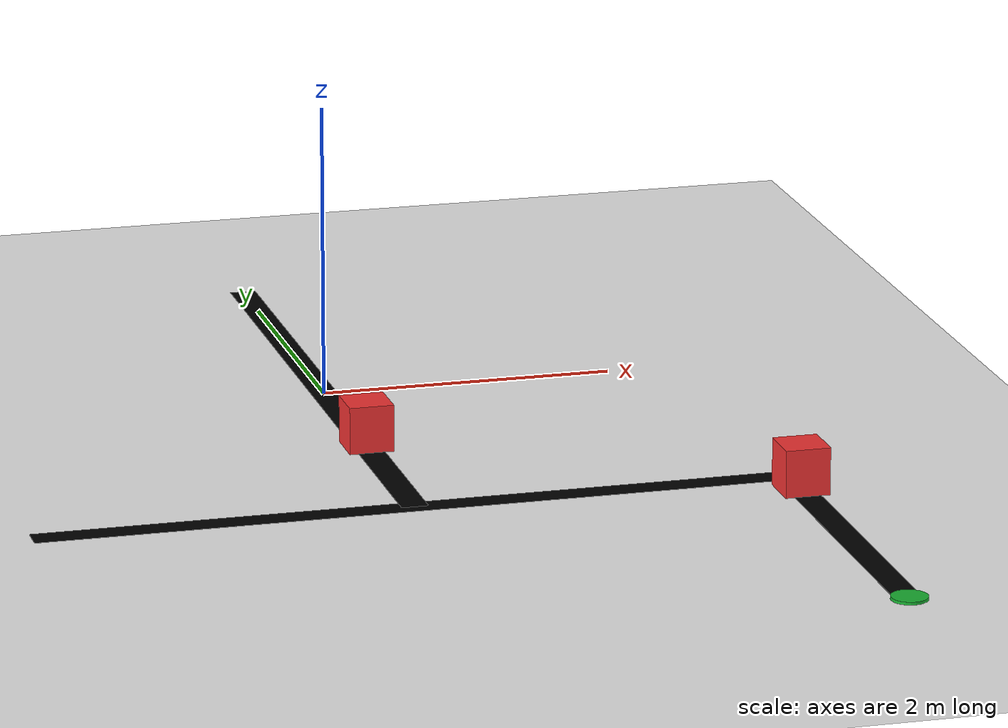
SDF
<?xml version="1.0" ?>
<sdf version="1.6">
  <world name="line_track_mission_world">

    <physics type="ode">
      <max_step_size>0.001</max_step_size>
      <real_time_factor>1.0</real_time_factor>
      <real_time_update_rate>1000</real_time_update_rate>
    </physics>

    <light name="sun" type="directional">
      <cast_shadows>true</cast_shadows>
      <direction>0.3 0.2 -1.0</direction>
      <diffuse>0.85 0.85 0.85 1</diffuse>
      <specular>0.1 0.1 0.1 1</specular>
    </light>

    <model name="ground_plane">
      <static>true</static>
      <link name="link">
        <collision name="collision">
          <geometry>
            <plane>
              <normal>0 0 1</normal>
              <size>14 14</size>
            </plane>
          </geometry>
        </collision>
        <visual name="visual">
          <geometry>
            <plane>
              <normal>0 0 1</normal>
              <size>14 14</size>
            </plane>
          </geometry>
          <material>
            <script>
              <uri>file://media/materials/scripts/gazebo.material</uri>
              <name>Gazebo/White</name>
            </script>
          </material>
        </visual>
      </link>
    </model>

    <model name="line_path">
      <static>true</static>
      <link name="line_link">

        <!-- Segment 1: Vertical DOWN (x=0, y from 2.5 to -2.5) -->
        <visual name="segment_vertical_1">
          <pose>0.0 0.0 0.001 0 0 1.5708</pose>
          <geometry><box><size>5.0 0.18 0.001</size></box></geometry>
          <material><ambient>0 0 0 1</ambient><diffuse>0 0 0 1</diffuse></material>
        </visual>

        <!-- Segment 2: Horizontal LEFT (y=-2.5, x from -2.5 to 2.5) -->
        <visual name="segment_horizontal">
          <pose>0.0 -2.5 0.001 0 0 0</pose>
          <geometry><box><size>5.0 0.18 0.001</size></box></geometry>
          <material><ambient>0 0 0 1</ambient><diffuse>0 0 0 1</diffuse></material>
        </visual>

        <!-- Segment 3: Vertical DOWN AGAIN (x=2.5, y from -2.5 to -5.0) -->
        <visual name="segment_vertical_2">
          <pose>2.5 -3.75 0.001 0 0 1.5708</pose>
          <geometry><box><size>2.5 0.18 0.001</size></box></geometry>
          <material><ambient>0 0 0 1</ambient><diffuse>0 0 0 1</diffuse></material>
        </visual>
      </link>
    </model>

    <model name="obstacle_1">
      <static>true</static>
      <pose>0.0 -1.2 0.16 0 0 0</pose>
      <link name="link">
        <collision name="collision"><geometry><box><size>0.30 0.30 0.32</size></box></geometry></collision>
        <visual name="visual"><geometry><box><size>0.30 0.30 0.32</size></box></geometry><material><ambient>0.95 0.2 0.2 1</ambient><diffuse>0.95 0.2 0.2 1</diffuse></material></visual>
      </link>
    </model>

    <model name="obstacle_2">
      <static>true</static>
      <pose>2.5 -2.8 0.16 0 0 0</pose>
      <link name="link">
        <collision name="collision"><geometry><box><size>0.30 0.30 0.32</size></box></geometry></collision>
        <visual name="visual"><geometry><box><size>0.30 0.30 0.32</size></box></geometry><material><ambient>0.95 0.2 0.2 1</ambient><diffuse>0.95 0.2 0.2 1</diffuse></material></visual>
      </link>
    </model>

    <model name="goal_marker">
      <static>true</static>
      <pose>2.5 -5.0 0.01 0 0 0</pose>
      <link name="goal_link">
        <visual name="goal_visual">
          <geometry><cylinder><radius>0.12</radius><length>0.02</length></cylinder></geometry>
          <material><ambient>0.1 0.7 0.2 1</ambient><diffuse>0.1 0.7 0.2 1</diffuse></material>
        </visual>
      </link>
    </model>

  </world>
</sdf>
